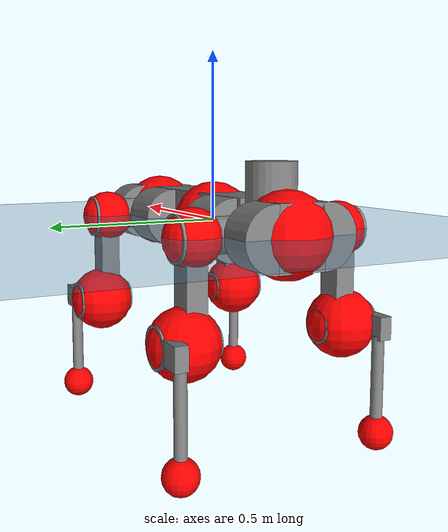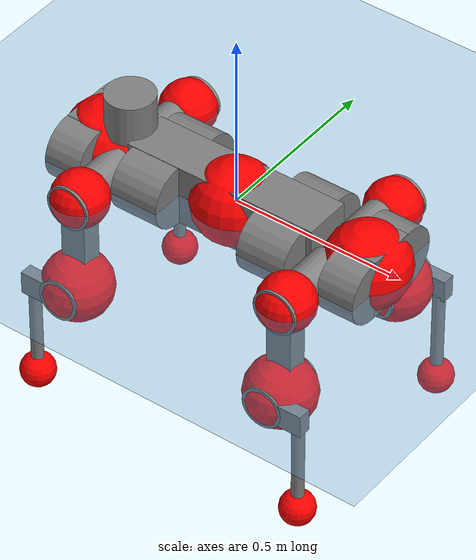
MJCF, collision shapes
<mujoco model="anymal_c">
  <compiler angle="radian" assetdir="assets" balanceinertia="true" inertiafromgeom="false"/>

  <option timestep="0.005" density="1.2" viscosity="2e-05"/>

  <size nkey="1"/>

  <visual>
    <quality shadowsize="8192"/>
    <map shadowclip="0.5"/>
  </visual>

  <default>
    <default class="/">
      <material specular="0" shininess="0.25"/>
      <geom contype="0" conaffinity="0" group="1" solref="-1000 -80"/>
      <site size="0.01 0.005 0.005" group="5"/>
      <general forcelimited="true" forcerange="-80 80" biastype="affine" gainprm="80" biasprm="0 -80 -2"/>
      <default class="anymal_c">
        <joint armature="0.01" damping="0.01" frictionloss="0.1"/>
        <default class="visual">
          <geom type="mesh" group="2"/>
          <default class="visual_zflip"/>
        </default>
        <default class="collision">
          <geom type="cylinder" group="3"/>
          <default class="foot">
            <geom size="0.03 0 0" type="sphere" condim="6" priority="1" friction="0.8 0.02 0.01" solimp="0.015 1 0.03"/>
          </default>
        </default>
      </default>
      <default class="reward_collision_sphere">
        <geom group="5" rgba="1 0 0 1"/>
      </default>
    </default>
  </default>

  <asset>
    <texture type="skybox" colorspace="auto" name="//unnamed_texture_0" builtin="gradient" rgb1="0.95 0.95 0.95" rgb2="0.95 0.95 0.95" width="100" height="600"/>
    <texture type="2d" colorspace="auto" name="texplane" builtin="checker" rgb1="0.345 0.575 0.748" rgb2="0.345 0.575 0.748" markrgb="1 1 1" width="512" height="512"/>
    <texture type="2d" colorspace="linear" name="base" file="base.png"/>
    <texture type="2d" colorspace="linear" name="top_shell" file="top_shell.png"/>
    <texture type="2d" colorspace="linear" name="bottom_shell" file="bottom_shell.png"/>
    <texture type="2d" colorspace="linear" name="remote" file="remote.png"/>
    <texture type="2d" colorspace="linear" name="hatch" file="hatch.png"/>
    <texture type="2d" colorspace="linear" name="handle" file="handle.png"/>
    <texture type="2d" colorspace="linear" name="face" file="face.png"/>
    <texture type="2d" colorspace="linear" name="battery" file="battery.png"/>
    <texture type="2d" colorspace="linear" name="lidar_cage" file="lidar_cage.png"/>
    <texture type="2d" colorspace="linear" name="depth_camera" file="depth_camera.png"/>
    <texture type="2d" colorspace="linear" name="wide_angle_camera" file="wide_angle_camera.png"/>
    <texture type="2d" colorspace="linear" name="lidar" file="lidar.png"/>
    <texture type="2d" colorspace="linear" name="drive" file="drive.png"/>
    <texture type="2d" colorspace="linear" name="hip_l" file="hip_l.png"/>
    <texture type="2d" colorspace="linear" name="shank_l" file="shank_l.png"/>
    <texture type="2d" colorspace="linear" name="foot" file="foot.png"/>
    <texture type="2d" colorspace="linear" name="thigh" file="thigh.png"/>
    <texture type="2d" colorspace="linear" name="shank_r" file="shank_r.png"/>
    <texture type="2d" colorspace="linear" name="hip_r" file="hip_r.png"/>
    <material name="MatPlane" class="/" texture="texplane" texuniform="true" texrepeat="2 2" specular="0.9" shininess="0.5"/>
    <material name="black_plastic" class="/" rgba="0.007 0.007 0.007 1"/>
    <material name="green" class="/" rgba="0.052 0.178 0.033 1"/>
    <material name="red" class="/" rgba="0.178 0.006 0.005 1"/>
    <material name="yellow" class="/" rgba="0.178 0.119 0.006 1"/>
    <material name="lwl" class="/" rgba="0.8 0.8 0.8 1"/>
    <material name="base" class="/" texture="base"/>
    <material name="top_shell" class="/" texture="top_shell"/>
    <material name="bottom_shell" class="/" texture="bottom_shell"/>
    <material name="hip_l" class="/" texture="hip_l"/>
    <material name="thigh" class="/" texture="thigh"/>
    <material name="shank_l" class="/" texture="shank_l"/>
    <material name="foot" class="/" texture="foot"/>
    <material name="hip_r" class="/" texture="hip_r"/>
    <material name="shank" class="/" texture="shank_r"/>
    <material name="hatch" class="/" texture="hatch"/>
    <material name="remote" class="/" texture="remote"/>
    <material name="handle" class="/" texture="handle"/>
    <material name="face" class="/" texture="face"/>
    <material name="depth_camera" class="/" texture="depth_camera"/>
    <material name="wide_angle_camera" class="/" texture="wide_angle_camera"/>
    <material name="battery" class="/" texture="battery"/>
    <material name="lidar_cage" class="/" texture="lidar_cage"/>
    <material name="lidar" class="/" texture="lidar"/>
    <material name="drive" class="/" texture="drive"/>
    <mesh name="base_0" class="/" file="base_0.obj"/>
    <mesh name="base_1" class="/" file="base_1.obj"/>
    <mesh name="base_2" class="/" file="base_2.obj"/>
    <mesh name="base_3" class="/" file="base_3.obj"/>
    <mesh name="base_4" class="/" file="base_4.obj"/>
    <mesh name="base_5" class="/" file="base_5.obj"/>
    <mesh name="top_shell" class="/" file="top_shell.obj"/>
    <mesh name="bottom_shell" class="/" file="bottom_shell.obj"/>
    <mesh name="remote" class="/" file="remote.obj"/>
    <mesh name="handle" class="/" file="handle.obj"/>
    <mesh name="face" class="/" file="face.obj"/>
    <mesh name="wide_angle_camera" class="/" file="wide_angle_camera.obj"/>
    <mesh name="depth_camera" class="/" file="depth_camera.obj"/>
    <mesh name="battery" class="/" file="battery.obj"/>
    <mesh name="lidar_cage" class="/" file="lidar_cage.obj"/>
    <mesh name="lidar" class="/" file="lidar.obj"/>
    <mesh name="drive" class="/" file="drive.obj"/>
    <mesh name="hip_l" class="/" file="hip_l.obj"/>
    <mesh name="thigh" class="/" file="thigh.obj"/>
    <mesh name="shank_l" class="/" file="shank_l.obj"/>
    <mesh name="foot" class="/" file="foot.obj"/>
    <mesh name="hip_r" class="/" file="hip_r.obj"/>
    <mesh name="hatch" class="/" file="hatch.obj"/>
    <mesh name="shank_r" class="/" file="shank_r.obj"/>
  </asset>

  <worldbody>
    <geom name="floor" class="/" size="100 100 0.125" type="plane" group="0" material="MatPlane"/>
    <light name="toplight_shadow" class="/" pos="0 0 5" dir="0.0990148 0.0990148 -0.990148" type="directional" ambient="0.04 0.04 0.04" diffuse="0.55 0.55 0.55" specular="0.12 0.12 0.12"/>
    <light name="toplight_fill" class="/" pos="0 0 5" dir="0.0990148 0.0990148 -0.990148" type="directional" castshadow="false" ambient="0.04 0.04 0.04" diffuse="0.3 0.3 0.3" specular="0.08 0.08 0.08"/>
    <body name="trunk" childclass="anymal_c" pos="-0.00381128 -0.000564335 -0.00193948" quat="0.999999 -0.00011724 -0.00120724 0.000380159">
      <inertial pos="0.00539067 0.00179154 0.0439079" quat="0.502449 0.490854 0.506385 0.500181" mass="19.492" diaginertia="0.388832 0.95469 0.183694"/>
      <joint name="//unnamed_joint_0" type="free" armature="0" damping="0" frictionloss="0"/>
      <geom name="//unnamed_geom_1" class="visual" material="green" mesh="base_0"/>
      <geom name="//unnamed_geom_2" class="visual" material="yellow" mesh="base_1"/>
      <geom name="//unnamed_geom_3" class="visual" material="red" mesh="base_2"/>
      <geom name="//unnamed_geom_4" class="visual" material="black_plastic" mesh="base_3"/>
      <geom name="//unnamed_geom_5" class="visual" material="lwl" mesh="base_4"/>
      <geom name="//unnamed_geom_6" class="visual" material="base" mesh="base_5"/>
      <geom name="trunk_1" class="collision" size="0.284565 0.0686881 0.0883133" type="box"/>
      <geom name="trunk_2" class="collision" size="0.0883133 0.0711413" pos="0.196003 0.075988 0" quat="0.707107 0 0.707107 0"/>
      <geom name="trunk_3" class="collision" size="0.0883133 0.0711413" pos="-0.196003 0.075988 0" quat="0.707107 0 0.707107 0"/>
      <geom name="trunk_4" class="collision" size="0.0883133 0.0711413" pos="0.196003 -0.075988 0" quat="0.707107 0 0.707107 0"/>
      <geom name="trunk_5" class="collision" size="0.0883133 0.0711413" pos="-0.196003 -0.075988 0" quat="0.707107 0 0.707107 0"/>
      <geom name="//unnamed_geom_12" class="visual" material="top_shell" mesh="top_shell"/>
      <geom name="//unnamed_geom_13" class="visual" material="bottom_shell" mesh="bottom_shell"/>
      <geom name="//unnamed_geom_14" class="visual" material="remote" mesh="remote"/>
      <geom name="//unnamed_geom_15" class="visual" material="handle" mesh="handle"/>
      <geom name="//unnamed_geom_16" class="visual" pos="0.373532 0 0" quat="1 0 0 0" material="face" mesh="face"/>
      <geom name="trunk_6" class="collision" size="0.0539692 0.0686881 0.0883133" pos="0.423096 0 0" type="box"/>
      <geom name="//unnamed_geom_18" class="collision" size="0.0883133 0.0539692" pos="0.423096 0.075988 0" quat="0.707107 0 0.707107 0"/>
      <geom name="//unnamed_geom_19" class="collision" size="0.0883133 0.0539692" pos="0.423096 -0.075988 0" quat="0.707107 0 0.707107 0"/>
      <geom name="//unnamed_geom_20" class="visual" pos="0.416024 0 -0.0283714" quat="0.965926 0 0.258819 0" material="depth_camera" mesh="depth_camera"/>
      <geom name="//unnamed_geom_21" class="visual" pos="0.462296 0 0.0143274" material="wide_angle_camera" mesh="wide_angle_camera"/>
      <geom name="//unnamed_geom_22" class="visual_zflip" pos="-0.373532 0 0" quat="0 0 0 1" material="face" mesh="face"/>
      <geom name="trunk_7" class="collision" size="0.0539692 0.0686881 0.0883133" pos="-0.423096 0 0" quat="0 0 0 1" type="box"/>
      <geom name="//unnamed_geom_24" class="collision" size="0.0883133 0.0539692" pos="-0.423096 -0.075988 0" quat="0 -0.707107 0 0.707107"/>
      <geom name="//unnamed_geom_25" class="collision" size="0.0883133 0.0539692" pos="-0.423096 0.075988 0" quat="0 -0.707107 0 0.707107"/>
      <geom name="//unnamed_geom_26" class="visual" pos="-0.416024 0 -0.0283714" quat="0 -0.258819 0 0.965926" material="depth_camera" mesh="depth_camera"/>
      <geom name="//unnamed_geom_27" class="visual_zflip" pos="-0.462296 0 0.0143274" quat="0 0 0 1" material="wide_angle_camera" mesh="wide_angle_camera"/>
      <geom name="//unnamed_geom_28" class="visual" material="battery" mesh="battery"/>
      <geom name="//unnamed_geom_29" class="visual" pos="0 0.0854224 0.027378" quat="0.683013 -0.183013 0.183013 0.683013" material="depth_camera" mesh="depth_camera"/>
      <geom name="//unnamed_geom_30" class="visual" pos="0 -0.0854224 0.027378" quat="0.683013 0.183013 0.183013 -0.683013" material="depth_camera" mesh="depth_camera"/>
      <geom name="//unnamed_geom_31" class="visual" pos="-0.328023 0 0.0703447" quat="1 0 0 0" material="lidar_cage" mesh="lidar_cage"/>
      <geom name="trunk_8" class="collision" size="0.0686881 0.0588755" pos="-0.328023 0 0.127769"/>
      <geom name="//unnamed_geom_33" class="visual" pos="-0.328023 7.24384e-05 0.136096" quat="0.707107 0 0 -0.707107" material="lidar" mesh="lidar"/>
      <geom name="//unnamed_geom_34" class="visual" pos="0.270259 0.112851 2.21616e-09" quat="0.258819 0.965926 0 0" material="drive" mesh="drive"/>
      <geom name="//unnamed_geom_35" class="visual" pos="0.270259 -0.112851 -2.21616e-09" quat="0.258819 -0.965926 0 0" material="drive" mesh="drive"/>
      <geom name="//unnamed_geom_36" class="visual" pos="-0.270259 0.112851 -2.21616e-09" quat="0 0 0.965926 -0.258819" material="drive" mesh="drive"/>
      <geom name="//unnamed_geom_37" class="visual" pos="-0.270259 -0.112851 2.21616e-09" quat="0 0 -0.965926 -0.258819" material="drive" mesh="drive"/>
      <geom name="//unnamed_geom_38" class="visual" pos="0.104535 0 0.0698662" quat="1 0 0 0" material="hatch" mesh="hatch"/>
      <geom name="//unnamed_geom_39" class="reward_collision_sphere" size="0.117751"/>
      <geom name="//unnamed_geom_40" class="reward_collision_sphere" size="0.117751" pos="0.405523 0 0"/>
      <geom name="//unnamed_geom_41" class="reward_collision_sphere" size="0.117751" pos="-0.405523 0 0"/>
      <site name="imu" pos="0.220061 0.0163049 0.0334782" size="0.00981259"/>
      <camera name="track" pos="0 -2.17109 0" quat="0.707107 0.707107 0 0" mode="trackcom"/>
      <camera name="ego_camera" pos="0.405523 0 -0.0382829" quat="-0.5 -0.5 0.5 0.5"/>
      <body name="LF_HIP" pos="0.270894 0.11075 0.00160033" quat="0.259474 0.96575 -0.000502032 -0.000652929">
        <inertial pos="0.0538144 -0.0163507 -0.00959509" quat="-0.128134 0.711746 -0.139919 0.67633" mass="2.64288" diaginertia="0.00341396 0.00780088 0.00264282"/>
        <joint name="LF_HAA" pos="0 0 0" axis="0.999847 -0.00597587 0.0164489" range="-0.786992 0.455964" armature="0.0101472" damping="0.0191747" frictionloss="0.0973711"/>
        <geom name="//unnamed_geom_42" class="visual" pos="0 0.000130367 -2.14126e-05" quat="0.258819 -0.965926 0 0" material="hip_l" mesh="hip_l"/>
        <geom name="//unnamed_geom_43" class="visual" pos="0.0539796 -0.0677898 -0.0381882" quat="0.183013 -0.683013 0.683013 0.183013" material="drive" mesh="drive"/>
        <geom name="//unnamed_geom_44" class="collision" size="0.049063 0.0686881" pos="0.0539796 -0.0129829 -0.00660858" quat="-0.353553 -0.612372 0.612372 -0.353553"/>
        <body name="LF_THIGH" pos="0.0559954 -0.0796228 -0.0384416" quat="0.183027 -0.683065 0.682787 0.183643">
          <inertial pos="0.0279073 -0.000641073 -0.232779" quat="0.993073 -0.00583957 -0.081712 0.0842353" mass="2.89011" diaginertia="0.0184067 0.0454736 0.00318817"/>
          <joint name="LF_HFE" pos="0 0 0" axis="0.999946 -0.0104092 -0.000789919" stiffness="0.019957" range="-3.10427 3.13871" armature="0.00872703" damping="0.00221793" frictionloss="0.0857292"/>
          <geom name="//unnamed_geom_45" class="visual" pos="-0.00366846 -5.78064e-06 0" quat="0.707107 0 0 -0.707107" material="thigh" mesh="thigh"/>
          <geom name="//unnamed_geom_46" class="collision" size="0.0637818 0.0392504" pos="0.0360465 0 0" quat="0.5 0.5 -0.5 -0.5"/>
          <geom name="//unnamed_geom_47" class="collision" size="0.0367972 0.0294378 0.138666" pos="0.0270349 0 -0.135248" quat="0.707107 0 0 -0.707107" type="box"/>
          <geom name="//unnamed_geom_48" class="visual" pos="0.0903866 0 -0.272765" quat="1 0 0 0" material="drive" mesh="drive"/>
          <geom name="//unnamed_geom_49" class="collision" size="0.049063 0.0686881" pos="0.0273052 0 -0.272765" quat="0.707107 0 0.707107 0"/>
          <geom name="//unnamed_geom_50" class="reward_collision_sphere" size="0.0785007" pos="0.0225291 0 0"/>
          <body name="LF_SHANK" pos="0.0924517 0.00233874 -0.273612" quat="1 -0.000313183 0.000323082 3.75123e-05">
            <inertial pos="0.00596214 -0.0655802 -0.0767555" quat="0.991754 -0.124096 0.00490399 -0.031625" mass="0.553106" diaginertia="0.00564893 0.0133228 0.00088046"/>
            <joint name="LF_KFE" pos="0 0 0" axis="0.999921 -0.00279431 -0.0122254" stiffness="0.00262856" range="-3.0922 3.14387" armature="0.010572" damping="0.0114554" frictionloss="0.105955"/>
            <geom name="//unnamed_geom_51" class="visual" pos="-0.0011962 -0.00637823 0" quat="0.707107 0 0 -0.707107" material="shank_l" mesh="shank_l"/>
            <geom name="LF_kfe_act" class="collision" size="0.0588755 0.0196252" pos="0.0180232 0 0" quat="0.5 0.5 -0.5 -0.5"/>
            <geom name="//unnamed_geom_53" class="collision" size="0.0564214 0.0331175 0.0186439" pos="0.0180232 -0.0624177 0" quat="0.5 0.5 -0.5 -0.5" type="box"/>
            <geom name="//unnamed_geom_54" class="visual" pos="0.0117605 -0.097529 -0.323461" quat="0.382683 0 0 -0.92388" material="foot" mesh="foot"/>
            <geom name="LF_calf" class="collision" size="0.017172 0.138605" pos="0.0117602 -0.0954736 -0.161731" quat="0.707107 0 0 -0.707107"/>
            <geom name="LF_foot" class="foot" size="0.0219648" pos="0.0117602 -0.0954736 -0.301927" quat="0.707107 0 0 -0.707107"/>
            <geom name="//unnamed_geom_57" class="reward_collision_sphere" size="0.0981259" pos="-0.0450581 0 0"/>
            <geom name="//unnamed_geom_58" class="reward_collision_sphere" size="0.049063" pos="0.0117602 -0.0954736 -0.301927"/>
            <site name="LF_foot" class="foot" pos="0.0117602 -0.0954736 -0.301927" quat="0.707107 0 0 -0.707107" size="0.00981259"/>
          </body>
        </body>
      </body>
      <body name="RF_HIP" pos="0.27298 -0.112379 0.00265933" quat="0.259026 -0.96587 -0.00012089 0.000131871">
        <inertial pos="0.0528315 0.0185489 -0.00763111" quat="0.13957 0.680962 0.124878 0.707967" mass="2.65118" diaginertia="0.00343719 0.00727836 0.00257703"/>
        <joint name="RF_HAA" pos="0 0 0" axis="0.999977 0.00226363 -0.00642294" range="-0.442057 0.730283" armature="0.0110063" damping="0.0149061" frictionloss="0.104874"/>
        <geom name="//unnamed_geom_59" class="visual" pos="0 -0.000130366 -2.14125e-05" quat="0.258819 0.965926 0 0" material="hip_r" mesh="hip_r"/>
        <geom name="//unnamed_geom_60" class="visual" pos="0.0539796 0.0677898 -0.0381882" quat="0.183013 0.683013 0.683013 -0.183013" material="drive" mesh="drive"/>
        <geom name="//unnamed_geom_61" class="collision" size="0.049063 0.0686881" pos="0.0539796 0.0129829 -0.00660858" quat="-0.353553 0.612372 0.612372 0.353553"/>
        <body name="RF_THIGH" pos="0.0536821 0.0825952 -0.0413815" quat="0.183019 0.683053 0.682969 -0.183018">
          <inertial pos="0.0292121 0.000434751 -0.235907" quat="0.992548 -0.003304 -0.0808534 0.091103" mass="2.86458" diaginertia="0.0173423 0.0425844 0.00323352"/>
          <joint name="RF_HFE" pos="0 0 0" axis="1 0.000461186 0.000792533" range="-3.1802 3.1225" armature="0.00960763" damping="0.00109532" frictionloss="0.108549"/>
          <geom name="//unnamed_geom_62" class="visual" pos="-0.00366846 -5.78064e-06 0" quat="0.707107 0 0 -0.707107" material="thigh" mesh="thigh"/>
          <geom name="//unnamed_geom_63" class="collision" size="0.0637818 0.0392504" pos="0.0360465 0 0" quat="0.5 0.5 0.5 0.5"/>
          <geom name="//unnamed_geom_64" class="collision" size="0.0367972 0.0294378 0.138666" pos="0.0270349 0 -0.135248" quat="0.707107 0 0 0.707107" type="box"/>
          <geom name="//unnamed_geom_65" class="visual" pos="0.0903866 0 -0.272765" quat="1 0 0 0" material="drive" mesh="drive"/>
          <geom name="//unnamed_geom_66" class="collision" size="0.049063 0.0686881" pos="0.0273052 0 -0.272765" quat="0.707107 0 0.707107 0"/>
          <geom name="//unnamed_geom_67" class="reward_collision_sphere" size="0.0785007" pos="0.0225291 0 0"/>
          <body name="RF_SHANK" pos="0.0904967 0.000875357 -0.275529" quat="1 -1.55175e-05 2.67414e-05 6.14973e-05">
            <inertial pos="0.00590279 0.0668761 -0.0777927" quat="0.993747 0.109986 -0.00519907 0.0185453" mass="0.55878" diaginertia="0.00603639 0.0139565 0.000902983"/>
            <joint name="RF_KFE" pos="0 0 0" axis="0.999887 0.0099158 0.0112714" stiffness="0.00500206" range="-3.10793 3.14172" armature="0.00852295" damping="0.00475059" frictionloss="0.0866762"/>
            <geom name="//unnamed_geom_68" class="visual" pos="-0.0011962 0.00637821 0" quat="0.707107 0 0 0.707107" material="shank" mesh="shank_r"/>
            <geom name="RF_kfe_act" class="collision" size="0.0588755 0.0196252" pos="0.0180232 0 0" quat="0.5 0.5 0.5 0.5"/>
            <geom name="//unnamed_geom_70" class="collision" size="0.0564214 0.0331175 0.0186439" pos="0.0180232 0.0624177 0" quat="0.5 0.5 0.5 0.5" type="box"/>
            <geom name="//unnamed_geom_71" class="visual" pos="0.0117599 0.097529 -0.323461" quat="0.382683 0 0 0.92388" material="foot" mesh="foot"/>
            <geom name="RF_calf" class="collision" size="0.017172 0.138605" pos="0.0117602 0.0954736 -0.161731" quat="0.707107 0 0 0.707107"/>
            <geom name="RF_foot" class="foot" size="0.02503" pos="0.0117602 0.0954736 -0.301927" quat="0.707107 0 0 0.707107"/>
            <geom name="//unnamed_geom_74" class="reward_collision_sphere" size="0.0981259" pos="-0.0450581 0 0"/>
            <geom name="//unnamed_geom_75" class="reward_collision_sphere" size="0.049063" pos="0.0117602 0.0954736 -0.301927"/>
            <site name="RF_foot" class="foot" pos="0.0117602 0.0954736 -0.301927" quat="0.707107 0 0 0.707107" size="0.00981259"/>
          </body>
        </body>
      </body>
      <body name="LH_HIP" pos="-0.268528 0.113363 0.000135072" quat="0.000478556 0.000299025 0.965876 -0.259004">
        <inertial pos="0.053635 0.0135524 -0.00778853" quat="0.146507 0.665315 0.130045 0.720403" mass="2.61397" diaginertia="0.00363188 0.00769942 0.00264655"/>
        <joint name="LH_HAA" pos="0 0 0" axis="0.999983 0.0010248 -0.00570669" range="-0.532795 0.700072" armature="0.0102768" damping="0" frictionloss="0.0884746"/>
        <geom name="//unnamed_geom_76" class="visual" pos="0 -0.000130366 -2.14125e-05" quat="-0.258819 -0.965926 0 0" material="hip_r" mesh="hip_r"/>
        <geom name="//unnamed_geom_77" class="visual" pos="0.0539796 0.0677898 -0.0381882" quat="0.183013 0.683013 0.683013 -0.183013" material="drive" mesh="drive"/>
        <geom name="//unnamed_geom_78" class="collision" size="0.049063 0.0686881" pos="0.0539796 0.0129829 -0.00660858" quat="-0.353553 0.612372 0.612372 0.353553"/>
        <body name="LH_THIGH" pos="0.0521001 0.0806976 -0.0420337" quat="0.182722 0.683878 0.682406 -0.182333">
          <inertial pos="0.0282657 -0.000279282 -0.232802" quat="0.991704 -0.0125017 -0.0812816 0.0987943" mass="2.8816" diaginertia="0.0185459 0.0477655 0.00349526"/>
          <joint name="LH_HFE" pos="0 0 0" axis="0.999993 -0.00357566 -0.000980487" range="-3.13932 3.15119" armature="0.00963041" damping="0" frictionloss="0.0983322"/>
          <geom name="//unnamed_geom_79" class="visual" pos="-0.00366846 -5.78064e-06 0" quat="0.707107 0 0 -0.707107" material="thigh" mesh="thigh"/>
          <geom name="//unnamed_geom_80" class="collision" size="0.0637818 0.0392504" pos="0.0360465 0 0" quat="0.5 0.5 -0.5 -0.5"/>
          <geom name="//unnamed_geom_81" class="collision" size="0.0367972 0.0294378 0.138666" pos="0.0270349 0 -0.135248" quat="0.707107 0 0 -0.707107" type="box"/>
          <geom name="//unnamed_geom_82" class="visual" pos="0.0903866 0 -0.272765" quat="1 0 0 0" material="drive" mesh="drive"/>
          <geom name="//unnamed_geom_83" class="collision" size="0.049063 0.0686881" pos="0.0273052 0 -0.272765" quat="0.707107 0 0.707107 0"/>
          <geom name="//unnamed_geom_84" class="reward_collision_sphere" size="0.0785007" pos="0.0225291 0 0"/>
          <body name="LH_SHANK" pos="0.0906043 -0.00110417 -0.270398" quat="1 0.000546374 0.000506645 0.000436285">
            <inertial pos="0.00236744 0.0630298 -0.0767119" quat="0.992973 0.114541 -0.008146 0.0286024" mass="0.574101" diaginertia="0.0061222 0.0144172 0.000969026"/>
            <joint name="LH_KFE" pos="0 0 0" axis="0.999961 -0.00841707 -0.0028242" stiffness="0.0176485" range="-3.14589 3.18145" armature="0.0104124" damping="0.00454278" frictionloss="0.0825779"/>
            <geom name="//unnamed_geom_85" class="visual" pos="-0.0011962 0.00637821 0" quat="-0.707107 0 0 -0.707107" material="shank" mesh="shank_r"/>
            <geom name="LH_kfe_act" class="collision" size="0.0588755 0.0196252" pos="0.0180232 0 0" quat="0.5 0.5 -0.5 -0.5"/>
            <geom name="//unnamed_geom_87" class="collision" size="0.0564214 0.0331175 0.0186439" pos="0.0180232 0.0624177 0" quat="0.5 0.5 -0.5 -0.5" type="box"/>
            <geom name="//unnamed_geom_88" class="visual" pos="0.0117599 0.097529 -0.323461" quat="-0.382683 0 0 -0.92388" material="foot" mesh="foot"/>
            <geom name="LH_calf" class="collision" size="0.017172 0.138605" pos="0.0117602 0.0954736 -0.161731" quat="0.707107 0 0 -0.707107"/>
            <geom name="LH_foot" class="foot" size="0.0294047" pos="0.0117602 0.0954736 -0.301927" quat="0.707107 0 0 -0.707107"/>
            <geom name="//unnamed_geom_91" class="reward_collision_sphere" size="0.0981259" pos="-0.0450581 0 0"/>
            <geom name="//unnamed_geom_92" class="reward_collision_sphere" size="0.049063" pos="0.0117602 0.0954736 -0.301927"/>
            <site name="LH_foot" class="foot" pos="0.0117602 0.0954736 -0.301927" quat="0.707107 0 0 -0.707107" size="0.00981259"/>
          </body>
        </body>
      </body>
      <body name="RH_HIP" pos="-0.267771 -0.113866 0.00210015" quat="0.000498545 -0.00128347 -0.966057 -0.258324">
        <inertial pos="0.0478148 -0.0168494 -0.00484563" quat="-0.128976 0.709794 -0.13543 0.67913" mass="2.63314" diaginertia="0.00350708 0.00742994 0.00260557"/>
        <joint name="RH_HAA" pos="0 0 0" axis="0.999844 -0.0137024 0.0111669" range="-0.672807 0.535918" armature="0.00878274" damping="0.00550608" frictionloss="0.109399"/>
        <geom name="//unnamed_geom_93" class="visual" pos="0 0.000130367 -2.14126e-05" quat="-0.258819 0.965926 0 0" material="hip_l" mesh="hip_l"/>
        <geom name="//unnamed_geom_94" class="visual" pos="0.0539796 -0.0677898 -0.0381882" quat="-0.183013 0.683013 -0.683013 -0.183013" material="drive" mesh="drive"/>
        <geom name="//unnamed_geom_95" class="collision" size="0.049063 0.0686881" pos="0.0539796 -0.0129829 -0.00660858" quat="0.353553 0.612372 -0.612372 0.353553"/>
        <body name="RH_THIGH" pos="0.0513279 -0.0759711 -0.0370452" quat="-0.183094 0.683024 -0.682968 -0.183055">
          <inertial pos="0.0266382 -0.000796729 -0.234982" quat="0.993163 -0.00175444 -0.0786212 0.0862699" mass="2.95065" diaginertia="0.017481 0.0453422 0.00333634"/>
          <joint name="RH_HFE" pos="0 0 0" axis="0.999941 0.00908202 0.00588322" stiffness="0.00602704" range="-3.13267 3.11124" armature="0.00921238" damping="0.00358244" frictionloss="0.109536"/>
          <geom name="//unnamed_geom_96" class="visual" pos="-0.00366846 -5.78064e-06 0" quat="0.707107 0 0 -0.707107" material="thigh" mesh="thigh"/>
          <geom name="//unnamed_geom_97" class="collision" size="0.0637818 0.0392504" pos="0.0360465 0 0" quat="0.5 0.5 0.5 0.5"/>
          <geom name="//unnamed_geom_98" class="collision" size="0.0367972 0.0294378 0.138666" pos="0.0270349 0 -0.135248" quat="0.707107 0 0 0.707107" type="box"/>
          <geom name="//unnamed_geom_99" class="visual" pos="0.0903866 0 -0.272765" quat="1 0 0 0" material="drive" mesh="drive"/>
          <geom name="//unnamed_geom_100" class="collision" size="0.049063 0.0686881" pos="0.0273052 0 -0.272765" quat="0.707107 0 0.707107 0"/>
          <geom name="//unnamed_geom_101" class="reward_collision_sphere" size="0.0785007" pos="0.0225291 0 0"/>
          <body name="RH_SHANK" pos="0.089183 0.00177284 -0.26989" quat="1 -4.46129e-05 6.16829e-06 -0.000224481">
            <inertial pos="0.00504161 -0.0644913 -0.0766919" quat="0.993385 -0.112433 -0.00671206 -0.0223415" mass="0.552879" diaginertia="0.00623773 0.013851 0.000889194"/>
            <joint name="RH_KFE" pos="0 0 0" axis="0.999958 -0.00905263 0.00117506" stiffness="0.000695617" range="-3.17048 3.15231" armature="0.00852069" damping="0" frictionloss="0.0851519"/>
            <geom name="//unnamed_geom_102" class="visual" pos="-0.0011962 -0.00637823 0" quat="0.707107 0 0 -0.707107" material="shank_l" mesh="shank_l"/>
            <geom name="RH_kfe_act" class="collision" size="0.0588755 0.0196252" pos="0.0180232 0 0" quat="0.5 0.5 0.5 0.5"/>
            <geom name="//unnamed_geom_104" class="collision" size="0.0564214 0.0331175 0.0186439" pos="0.0180232 -0.0624177 0" quat="0.5 0.5 0.5 0.5" type="box"/>
            <geom name="//unnamed_geom_105" class="visual" pos="0.0117605 -0.097529 -0.323461" quat="0.382683 0 0 -0.92388" material="foot" mesh="foot"/>
            <geom name="RH_calf" class="collision" size="0.017172 0.138605" pos="0.0117602 -0.0954736 -0.161731" quat="0.707107 0 0 0.707107"/>
            <geom name="RH_foot" class="foot" size="0.0315432" pos="0.0117602 -0.0954736 -0.301927" quat="0.707107 0 0 0.707107"/>
            <geom name="//unnamed_geom_108" class="reward_collision_sphere" size="0.0981259" pos="-0.0450581 0 0"/>
            <geom name="//unnamed_geom_109" class="reward_collision_sphere" size="0.049063" pos="0.0117602 -0.0954736 -0.301927"/>
            <site name="RH_foot" class="foot" pos="0.0117602 -0.0954736 -0.301927" quat="0.707107 0 0 0.707107" size="0.00981259"/>
          </body>
        </body>
      </body>
    </body>
  </worldbody>

  <contact>
    <pair class="/" geom1="floor" geom2="LF_foot" name="//unnamed_contact_0"/>
    <pair class="/" geom1="floor" geom2="RF_foot" name="//unnamed_contact_1"/>
    <pair class="/" geom1="floor" geom2="LH_foot" name="//unnamed_contact_2"/>
    <pair class="/" geom1="floor" geom2="RH_foot" name="//unnamed_contact_3"/>
  </contact>

  <actuator>
    <general name="LF_HAA" class="/" joint="LF_HAA" forcerange="-80.0278 80.0278" gainprm="81.6736" biasprm="0 -81.6736 -2.07268"/>
    <general name="LF_HFE" class="/" joint="LF_HFE" forcerange="-73.8708 73.8708" gainprm="81.6736" biasprm="0 -81.6736 -2.07268"/>
    <general name="LF_KFE" class="/" joint="LF_KFE" forcerange="-75.6216 75.6216" gainprm="81.6736" biasprm="0 -81.6736 -2.07268"/>
    <general name="RF_HAA" class="/" joint="RF_HAA" forcerange="-81.3371 81.3371" gainprm="81.6736" biasprm="0 -81.6736 -2.07268"/>
    <general name="RF_HFE" class="/" joint="RF_HFE" forcerange="-84.422 84.422" gainprm="81.6736" biasprm="0 -81.6736 -2.07268"/>
    <general name="RF_KFE" class="/" joint="RF_KFE" forcerange="-80.1966 80.1966" gainprm="81.6736" biasprm="0 -81.6736 -2.07268"/>
    <general name="LH_HAA" class="/" joint="LH_HAA" forcerange="-69.9045 69.9045" gainprm="81.6736" biasprm="0 -81.6736 -2.07268"/>
    <general name="LH_HFE" class="/" joint="LH_HFE" forcerange="-73.7451 73.7451" gainprm="81.6736" biasprm="0 -81.6736 -2.07268"/>
    <general name="LH_KFE" class="/" joint="LH_KFE" forcerange="-87.0289 87.0289" gainprm="81.6736" biasprm="0 -81.6736 -2.07268"/>
    <general name="RH_HAA" class="/" joint="RH_HAA" forcerange="-77.4136 77.4136" gainprm="81.6736" biasprm="0 -81.6736 -2.07268"/>
    <general name="RH_HFE" class="/" joint="RH_HFE" forcerange="-71.1258 71.1258" gainprm="81.6736" biasprm="0 -81.6736 -2.07268"/>
    <general name="RH_KFE" class="/" joint="RH_KFE" forcerange="-84.1254 84.1254" gainprm="81.6736" biasprm="0 -81.6736 -2.07268"/>
  </actuator>

  <sensor>
    <gyro site="imu" name="imu_angular_velocity"/>
    <velocimeter site="imu" name="imu_linear_velocity"/>
    <framelinvel objtype="site" objname="LF_foot" name="LF_foot_global_linear_velocity"/>
    <framelinvel objtype="site" objname="RF_foot" name="RF_foot_global_linear_velocity"/>
    <framelinvel objtype="site" objname="LH_foot" name="LH_foot_global_linear_velocity"/>
    <framelinvel objtype="site" objname="RH_foot" name="RH_foot_global_linear_velocity"/>
  </sensor>

  <keyframe>
    <key name="home" qpos="0 0 0.55 1 0 0 0 0 0.4 -0.8 0 -0.4 0.8 0 -0.4 0.8 0 0.4 -0.8"/>
  </keyframe>
</mujoco>
